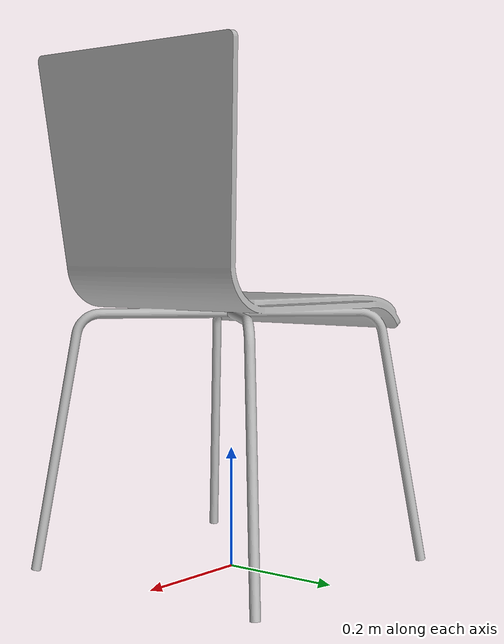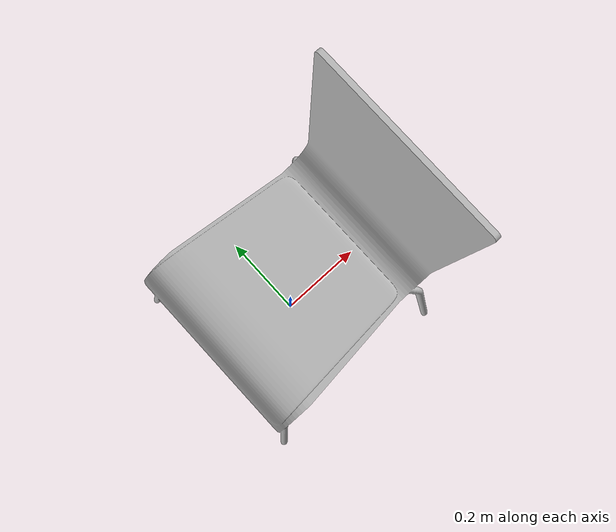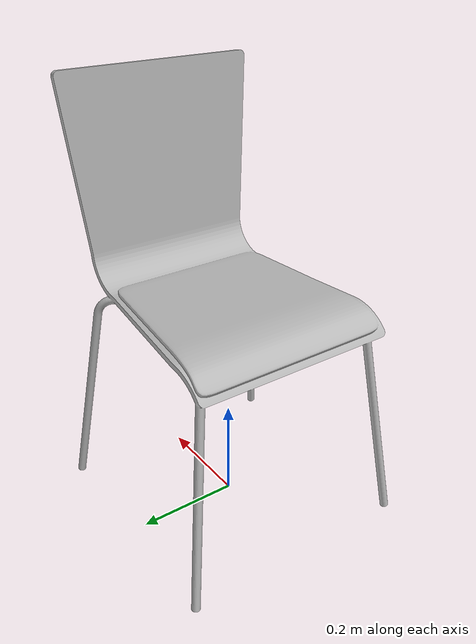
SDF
<sdf version='1.5'>
  <!-- Draw Model -->
  <model name="chair_orange">
    <static>false</static>
    <link name="chair_orange">
      <collision name="collision">
        <geometry>
          <mesh>
            <uri>model://chair_orange/meshes/STL/chair.stl</uri>
          </mesh>
        </geometry>
      </collision>

      <visual name="visual">
        <geometry>
          <mesh>
            <uri>model://chair_orange/meshes/DAE/orange_chair.dae</uri>
          </mesh>
        </geometry>
      </visual>
    </link>
  </model>
</sdf>
